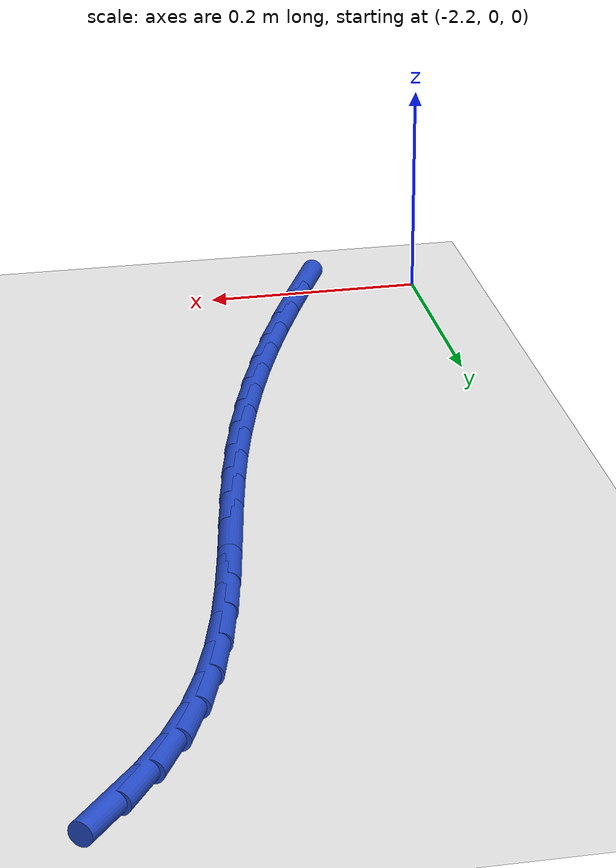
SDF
<sdf version="1.6">
 <world name="default">
  <model name="ground_plane">
   <static>1</static>
   <link name="link">
    <collision name="collision">
     <geometry><plane><normal>0 0 1</normal><size>100 100</size></plane></geometry>
     <surface><friction><ode><mu>100</mu><mu2>50</mu2></ode></friction></surface>
    </collision>
    <visual name="visual">
     <cast_shadows>0</cast_shadows>
     <geometry><plane><normal>0 0 1</normal><size>100 100</size></plane></geometry>
     <material>
      <script><uri>file://media/materials/scripts/gazebo.material</uri><name>Gazebo/WhiteGlow</name></script>
     </material>
    </visual>
   </link>
  </model>
  <model name="line">
   <link name="link_57">
    <pose>-1.7811811001586215 0.876816145166145 0.01 0 1.57 0.8921845530803242</pose>
    <collision name="collision">
     <geometry><cylinder><radius>0.01</radius><length>0.08</length></cylinder></geometry>
    </collision>
    <visual name="visual">
     <material>
      <script><name>Gazebo/Blue</name><uri>file://media/materials/scripts/gazebo.material</uri></script>
     </material>
     <geometry><cylinder><radius>0.01</radius><length>0.08</length></cylinder></geometry>
    </visual>
   </link>
   <link name="link_58">
    <pose>-1.8090619838958961 0.8422402608491988 0.01 0 1.57 0.9751661863777186</pose>
    <collision name="collision">
     <geometry><cylinder><radius>0.01</radius><length>0.08</length></cylinder></geometry>
    </collision>
    <visual name="visual">
     <material>
      <script><name>Gazebo/Blue</name><uri>file://media/materials/scripts/gazebo.material</uri></script>
     </material>
     <geometry><cylinder><radius>0.01</radius><length>0.08</length></cylinder></geometry>
    </visual>
   </link>
   <link name="link_59">
    <pose>-1.833873096005302 0.805631701850906 0.01 0 1.57 1.072434941786886</pose>
    <collision name="collision">
     <geometry><cylinder><radius>0.01</radius><length>0.08</length></cylinder></geometry>
    </collision>
    <visual name="visual">
     <material>
      <script><name>Gazebo/Blue</name><uri>file://media/materials/scripts/gazebo.material</uri></script>
     </material>
     <geometry><cylinder><radius>0.01</radius><length>0.08</length></cylinder></geometry>
    </visual>
   </link>
   <link name="link_60">
    <pose>-1.8551552864347258 0.7665227341611508 0.01 0 1.57 1.1638056067535414</pose>
    <collision name="collision">
     <geometry><cylinder><radius>0.01</radius><length>0.08</length></cylinder></geometry>
    </collision>
    <visual name="visual">
     <material>
      <script><name>Gazebo/Blue</name><uri>file://media/materials/scripts/gazebo.material</uri></script>
     </material>
     <geometry><cylinder><radius>0.01</radius><length>0.08</length></cylinder></geometry>
    </visual>
   </link>
   <link name="link_61">
    <pose>-1.873050177657493 0.7250088632049151 0.01 0 1.57 1.2373509282849753</pose>
    <collision name="collision">
     <geometry><cylinder><radius>0.01</radius><length>0.08</length></cylinder></geometry>
    </collision>
    <visual name="visual">
     <material>
      <script><name>Gazebo/Blue</name><uri>file://media/materials/scripts/gazebo.material</uri></script>
     </material>
     <geometry><cylinder><radius>0.01</radius><length>0.08</length></cylinder></geometry>
    </visual>
   </link>
   <link name="link_62">
    <pose>-1.8880996580891216 0.6815608538500233 0.01 0 1.57 1.2940756208096322</pose>
    <collision name="collision">
     <geometry><cylinder><radius>0.01</radius><length>0.08</length></cylinder></geometry>
    </collision>
    <visual name="visual">
     <material>
      <script><name>Gazebo/Blue</name><uri>file://media/materials/scripts/gazebo.material</uri></script>
     </material>
     <geometry><cylinder><radius>0.01</radius><length>0.08</length></cylinder></geometry>
    </visual>
   </link>
   <link name="link_63">
    <pose>-1.9008528803271834 0.6366562813186688 0.01 0 1.57 1.335373713327469</pose>
    <collision name="collision">
     <geometry><cylinder><radius>0.01</radius><length>0.08</length></cylinder></geometry>
    </collision>
    <visual name="visual">
     <material>
      <script><name>Gazebo/Blue</name><uri>file://media/materials/scripts/gazebo.material</uri></script>
     </material>
     <geometry><cylinder><radius>0.01</radius><length>0.08</length></cylinder></geometry>
    </visual>
   </link>
   <link name="link_64">
    <pose>-1.9118589969692452 0.5907727208330461 0.01 0 1.57 1.3624145225281816</pose>
    <collision name="collision">
     <geometry><cylinder><radius>0.01</radius><length>0.08</length></cylinder></geometry>
    </collision>
    <visual name="visual">
     <material>
      <script><name>Gazebo/Blue</name><uri>file://media/materials/scripts/gazebo.material</uri></script>
     </material>
     <geometry><cylinder><radius>0.01</radius><length>0.08</length></cylinder></geometry>
    </visual>
   </link>
   <link name="link_65">
    <pose>-1.921667160612877 0.5443877476153486 0.01 0 1.57 1.375938016244257</pose>
    <collision name="collision">
     <geometry><cylinder><radius>0.01</radius><length>0.08</length></cylinder></geometry>
    </collision>
    <visual name="visual">
     <material>
      <script><name>Gazebo/Blue</name><uri>file://media/materials/scripts/gazebo.material</uri></script>
     </material>
     <geometry><cylinder><radius>0.01</radius><length>0.08</length></cylinder></geometry>
    </visual>
   </link>
   <link name="link_66">
    <pose>-1.9308265238556486 0.4979789368877697 0.01 0 1.57 1.3761495011889593</pose>
    <collision name="collision">
     <geometry><cylinder><radius>0.01</radius><length>0.08</length></cylinder></geometry>
    </collision>
    <visual name="visual">
     <material>
      <script><name>Gazebo/Blue</name><uri>file://media/materials/scripts/gazebo.material</uri></script>
     </material>
     <geometry><cylinder><radius>0.01</radius><length>0.08</length></cylinder></geometry>
    </visual>
   </link>
   <link name="link_67">
    <pose>-1.939886239295129 0.4520238638725042 0.01 0 1.57 1.3629282185330576</pose>
    <collision name="collision">
     <geometry><cylinder><radius>0.01</radius><length>0.08</length></cylinder></geometry>
    </collision>
    <visual name="visual">
     <material>
      <script><name>Gazebo/Blue</name><uri>file://media/materials/scripts/gazebo.material</uri></script>
     </material>
     <geometry><cylinder><radius>0.01</radius><length>0.08</length></cylinder></geometry>
    </visual>
   </link>
   <link name="link_68">
    <pose>-1.9493865817249383 0.4069803369674896 0.01 0 1.57 1.3414266242417359</pose>
    <collision name="collision">
     <geometry><cylinder><radius>0.01</radius><length>0.08</length></cylinder></geometry>
    </collision>
    <visual name="visual">
     <material>
      <script><name>Gazebo/Blue</name><uri>file://media/materials/scripts/gazebo.material</uri></script>
     </material>
     <geometry><cylinder><radius>0.01</radius><length>0.08</length></cylinder></geometry>
    </visual>
   </link>
   <link name="link_69">
    <pose>-1.9596807948858939 0.36288973163607324 0.01 0 1.57 1.317391326848597</pose>
    <collision name="collision">
     <geometry><cylinder><radius>0.01</radius><length>0.08</length></cylinder></geometry>
    </collision>
    <visual name="visual">
     <material>
      <script><name>Gazebo/Blue</name><uri>file://media/materials/scripts/gazebo.material</uri></script>
     </material>
     <geometry><cylinder><radius>0.01</radius><length>0.08</length></cylinder></geometry>
    </visual>
   </link>
   <link name="link_70">
    <pose>-1.970944154696322 0.31939717009129426 0.01 0 1.57 1.2916580364786892</pose>
    <collision name="collision">
     <geometry><cylinder><radius>0.01</radius><length>0.08</length></cylinder></geometry>
    </collision>
    <visual name="visual">
     <material>
      <script><name>Gazebo/Blue</name><uri>file://media/materials/scripts/gazebo.material</uri></script>
     </material>
     <geometry><cylinder><radius>0.01</radius><length>0.08</length></cylinder></geometry>
    </visual>
   </link>
   <link name="link_71">
    <pose>-1.9833448733187722 0.27613204678064845 0.01 0 1.57 1.2649507978252457</pose>
    <collision name="collision">
     <geometry><cylinder><radius>0.01</radius><length>0.08</length></cylinder></geometry>
    </collision>
    <visual name="visual">
     <material>
      <script><name>Gazebo/Blue</name><uri>file://media/materials/scripts/gazebo.material</uri></script>
     </material>
     <geometry><cylinder><radius>0.01</radius><length>0.08</length></cylinder></geometry>
    </visual>
   </link>
   <link name="link_72">
    <pose>-1.9970511629157939 0.2327237561516331 0.01 0 1.57 1.2380343368907398</pose>
    <collision name="collision">
     <geometry><cylinder><radius>0.01</radius><length>0.08</length></cylinder></geometry>
    </collision>
    <visual name="visual">
     <material>
      <script><name>Gazebo/Blue</name><uri>file://media/materials/scripts/gazebo.material</uri></script>
     </material>
     <geometry><cylinder><radius>0.01</radius><length>0.08</length></cylinder></geometry>
    </visual>
   </link>
   <link name="link_73">
    <pose>-2.0122312356499372 0.18880169265174374 0.01 0 1.57 1.211641181903166</pose>
    <collision name="collision">
     <geometry><cylinder><radius>0.01</radius><length>0.08</length></cylinder></geometry>
    </collision>
    <visual name="visual">
     <material>
      <script><name>Gazebo/Blue</name><uri>file://media/materials/scripts/gazebo.material</uri></script>
     </material>
     <geometry><cylinder><radius>0.01</radius><length>0.08</length></cylinder></geometry>
    </visual>
   </link>
   <link name="link_74">
    <pose>-2.029053303683752 0.14399525072847766 0.01 0 1.57 1.1864086704836174</pose>
    <collision name="collision">
     <geometry><cylinder><radius>0.01</radius><length>0.08</length></cylinder></geometry>
    </collision>
    <visual name="visual">
     <material>
      <script><name>Gazebo/Blue</name><uri>file://media/materials/scripts/gazebo.material</uri></script>
     </material>
     <geometry><cylinder><radius>0.01</radius><length>0.08</length></cylinder></geometry>
    </visual>
   </link>
   <link name="link_75">
    <pose>-2.0476855791559134 0.09793382485404102 0.01 0 1.57 1.1638982123588455</pose>
    <collision name="collision">
     <geometry><cylinder><radius>0.01</radius><length>0.08</length></cylinder></geometry>
    </collision>
    <visual name="visual">
     <material>
      <script><name>Gazebo/Blue</name><uri>file://media/materials/scripts/gazebo.material</uri></script>
     </material>
     <geometry><cylinder><radius>0.01</radius><length>0.08</length></cylinder></geometry>
    </visual>
   </link>
   <link name="link_76">
    <pose>-2.0681878599206396 0.05035902261180677 0.01 0 1.57 1.1479655688666335</pose>
    <collision name="collision">
     <geometry><cylinder><radius>0.01</radius><length>0.08</length></cylinder></geometry>
    </collision>
    <visual name="visual">
     <material>
      <script><name>Gazebo/Blue</name><uri>file://media/materials/scripts/gazebo.material</uri></script>
     </material>
     <geometry><cylinder><radius>0.01</radius><length>0.08</length></cylinder></geometry>
    </visual>
   </link>
   <link name="link_77">
    <pose>-2.0901941186797806 0.0014531976122891372 0.01 0 1.57 1.1385942545344012</pose>
    <collision name="collision">
     <geometry><cylinder><radius>0.01</radius><length>0.08</length></cylinder></geometry>
    </collision>
    <visual name="visual">
     <material>
      <script><name>Gazebo/Blue</name><uri>file://media/materials/scripts/gazebo.material</uri></script>
     </material>
     <geometry><cylinder><radius>0.01</radius><length>0.08</length></cylinder></geometry>
    </visual>
   </link>
  </model>
 </world>
</sdf>
